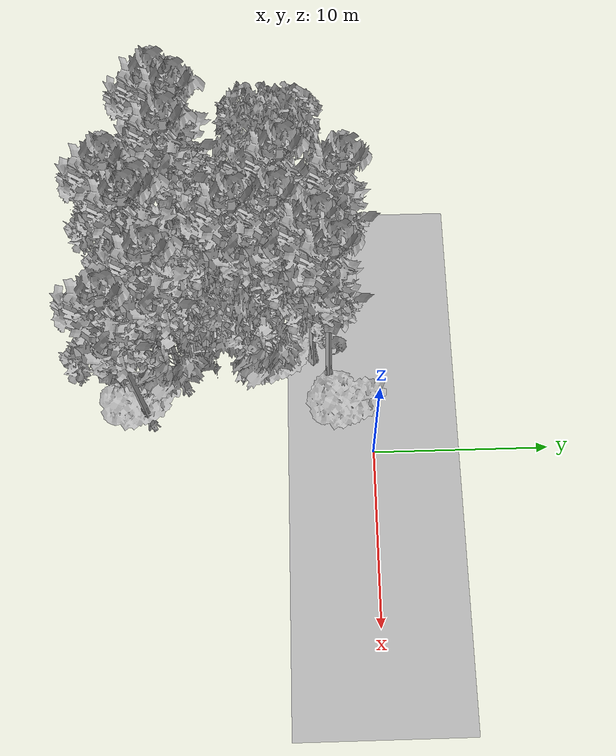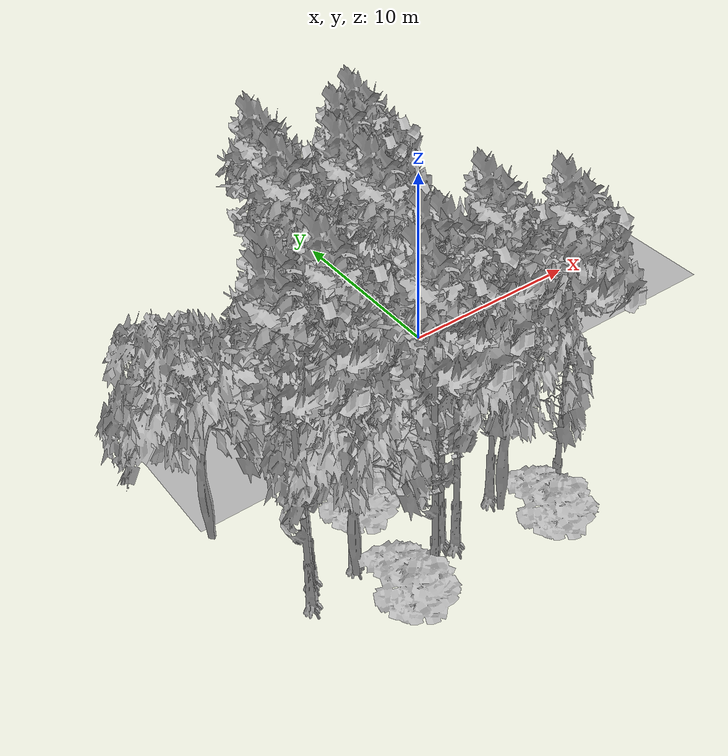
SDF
<sdf version="1.7">
 <world name="default">
  <model name="ground_plane">
   <static>1</static>
   <link name="link">
    <collision name="collision">
     <pose>-50 0 0 0 -0 0</pose>
     <geometry><plane><normal>0 0 1</normal><size>100 100</size></plane></geometry>
     <surface><contact><ode><min_depth>0.01</min_depth><max_vel>0</max_vel></ode></contact></surface>
    </collision>
    <visual name="grass">
     <cast_shadows>0</cast_shadows>
     <geometry>
      <mesh>
       <scale>0.5814285714285714 0.18142857142857144 0.1</scale>
       <uri>file://grass_plane/meshes/grass_plane.dae</uri>
      </mesh>
     </geometry>
    </visual>
   </link>
  </model>
  <model name="Tree 5">
   <static>1</static>
   <pose>-5.770280438324974 -3.3481930520723786 0 1.57079 -0 0</pose>
   <link name="link">
    <collision name="collision">
     <geometry><mesh><scale>3.5 5 3.5</scale><uri>model://tree_9/meshes/tree_9.obj</uri></mesh></geometry>
    </collision>
    <visual name="visual">
     <geometry><mesh><scale>3.5 5 3.5</scale><uri>model://tree_9/meshes/tree_9.obj</uri></mesh></geometry>
    </visual>
   </link>
  </model>
  <model name="Tree 10">
   <static>1</static>
   <pose>-6.427290292997256 -9.65219543196185 0 1.57079 -0 0</pose>
   <link name="link">
    <collision name="collision">
     <geometry><mesh><scale>3.5 5 3.5</scale><uri>model://tree_2/meshes/tree_2.obj</uri></mesh></geometry>
    </collision>
    <visual name="visual">
     <geometry><mesh><scale>3.5 5 3.5</scale><uri>model://tree_2/meshes/tree_2.obj</uri></mesh></geometry>
    </visual>
   </link>
  </model>
  <model name="Tree 11">
   <static>1</static>
   <pose>-11.699976823902972 -10.894039608267878 0 1.57079 -0 0</pose>
   <link name="link">
    <collision name="collision">
     <geometry><mesh><scale>3.5 5 3.5</scale><uri>model://tree_2/meshes/tree_2.obj</uri></mesh></geometry>
    </collision>
    <visual name="visual">
     <geometry><mesh><scale>3.5 5 3.5</scale><uri>model://tree_2/meshes/tree_2.obj</uri></mesh></geometry>
    </visual>
   </link>
  </model>
  <model name="Tree 38">
   <static>1</static>
   <pose>-10.811741499283201 -13.386256837153619 0 1.57079 -0 0</pose>
   <link name="link">
    <collision name="collision">
     <geometry><mesh><scale>4 2.5 4</scale><uri>model://tree_1/meshes/tree_1.obj</uri></mesh></geometry>
    </collision>
    <visual name="visual">
     <geometry><mesh><scale>4 2.5 4</scale><uri>model://tree_1/meshes/tree_1.obj</uri></mesh></geometry>
    </visual>
   </link>
  </model>
  <model name="Tree 44">
   <static>1</static>
   <pose>-4.452420643435083 -11.713150179870878 0 1.57079 -0 0</pose>
   <link name="link">
    <collision name="collision">
     <geometry><mesh><scale>3.5 5 3.5</scale><uri>model://tree_2/meshes/tree_2.obj</uri></mesh></geometry>
    </collision>
    <visual name="visual">
     <geometry><mesh><scale>3.5 5 3.5</scale><uri>model://tree_2/meshes/tree_2.obj</uri></mesh></geometry>
    </visual>
   </link>
  </model>
  <model name="Tree 70">
   <static>1</static>
   <pose>-13.979761720872823 -11.06183409672255 0 1.57079 -0 0</pose>
   <link name="link">
    <collision name="collision">
     <geometry><mesh><scale>3.5 5 3.5</scale><uri>model://tree_9/meshes/tree_9.obj</uri></mesh></geometry>
    </collision>
    <visual name="visual">
     <geometry><mesh><scale>3.5 5 3.5</scale><uri>model://tree_9/meshes/tree_9.obj</uri></mesh></geometry>
    </visual>
   </link>
  </model>
  <model name="Tree 109">
   <static>1</static>
   <pose>-15.518443925284636 -5.425385847746153 0 1.57079 -0 0</pose>
   <link name="link">
    <collision name="collision">
     <geometry><mesh><scale>3.5 5 3.5</scale><uri>model://tree_2/meshes/tree_2.obj</uri></mesh></geometry>
    </collision>
    <visual name="visual">
     <geometry><mesh><scale>3.5 5 3.5</scale><uri>model://tree_2/meshes/tree_2.obj</uri></mesh></geometry>
    </visual>
   </link>
  </model>
  <model name="Tree 116">
   <static>1</static>
   <pose>-7.7044737305500846 -11.631333290633659 0 1.57079 -0 0</pose>
   <link name="link">
    <collision name="collision">
     <geometry><mesh><scale>3.5 5 3.5</scale><uri>model://tree_9/meshes/tree_9.obj</uri></mesh></geometry>
    </collision>
    <visual name="visual">
     <geometry><mesh><scale>3.5 5 3.5</scale><uri>model://tree_9/meshes/tree_9.obj</uri></mesh></geometry>
    </visual>
   </link>
  </model>
  <model name="Tree 122">
   <static>1</static>
   <pose>-5.922536078951509 -5.738882718412427 0 1.57079 -0 0</pose>
   <link name="link">
    <collision name="collision">
     <geometry><mesh><scale>4 2.5 4</scale><uri>model://tree_1/meshes/tree_1.obj</uri></mesh></geometry>
    </collision>
    <visual name="visual">
     <geometry><mesh><scale>4 2.5 4</scale><uri>model://tree_1/meshes/tree_1.obj</uri></mesh></geometry>
    </visual>
   </link>
  </model>
  <model name="Tree 133">
   <static>1</static>
   <pose>-13.327398469383972 -10.05041229036016 0 1.57079 -0 0</pose>
   <link name="link">
    <collision name="collision">
     <geometry><mesh><scale>3.5 5 3.5</scale><uri>model://tree_9/meshes/tree_9.obj</uri></mesh></geometry>
    </collision>
    <visual name="visual">
     <geometry><mesh><scale>3.5 5 3.5</scale><uri>model://tree_9/meshes/tree_9.obj</uri></mesh></geometry>
    </visual>
   </link>
  </model>
  <model name="Tree 134">
   <static>1</static>
   <pose>-9.171331318813692 -13.105249612566006 0 1.57079 -0 0</pose>
   <link name="link">
    <collision name="collision">
     <geometry><mesh><scale>3.5 5 3.5</scale><uri>model://tree_9/meshes/tree_9.obj</uri></mesh></geometry>
    </collision>
    <visual name="visual">
     <geometry><mesh><scale>3.5 5 3.5</scale><uri>model://tree_9/meshes/tree_9.obj</uri></mesh></geometry>
    </visual>
   </link>
  </model>
  <model name="Tree 136">
   <static>1</static>
   <pose>-9.948034881585848 -8.123653087335656 0 1.57079 -0 0</pose>
   <link name="link">
    <collision name="collision">
     <geometry><mesh><scale>4 2.5 4</scale><uri>model://tree_1/meshes/tree_1.obj</uri></mesh></geometry>
    </collision>
    <visual name="visual">
     <geometry><mesh><scale>4 2.5 4</scale><uri>model://tree_1/meshes/tree_1.obj</uri></mesh></geometry>
    </visual>
   </link>
  </model>
  <model name="Tree 141">
   <static>1</static>
   <pose>-6.9168690257031855 -7.108718136604426 0 1.57079 -0 0</pose>
   <link name="link">
    <collision name="collision">
     <geometry><mesh><scale>3.5 5 3.5</scale><uri>model://tree_9/meshes/tree_9.obj</uri></mesh></geometry>
    </collision>
    <visual name="visual">
     <geometry><mesh><scale>3.5 5 3.5</scale><uri>model://tree_9/meshes/tree_9.obj</uri></mesh></geometry>
    </visual>
   </link>
  </model>
  <model name="Tree 146">
   <static>1</static>
   <pose>-7.275215294341891 -12.119292316022658 0 1.57079 -0 0</pose>
   <link name="link">
    <collision name="collision">
     <geometry><mesh><scale>3.5 5 3.5</scale><uri>model://tree_9/meshes/tree_9.obj</uri></mesh></geometry>
    </collision>
    <visual name="visual">
     <geometry><mesh><scale>3.5 5 3.5</scale><uri>model://tree_9/meshes/tree_9.obj</uri></mesh></geometry>
    </visual>
   </link>
  </model>
  <model name="Tree 157">
   <static>1</static>
   <pose>-4.419270396962034 -2.4527848097170235 0 1.57079 -0 0</pose>
   <link name="link">
    <collision name="collision">
     <geometry><mesh><scale>3.5 5 3.5</scale><uri>model://tree_9/meshes/tree_9.obj</uri></mesh></geometry>
    </collision>
    <visual name="visual">
     <geometry><mesh><scale>3.5 5 3.5</scale><uri>model://tree_9/meshes/tree_9.obj</uri></mesh></geometry>
    </visual>
   </link>
  </model>
  <model name="Tree 164">
   <static>1</static>
   <pose>-2.185269588739885 -12.832927172999572 0 1.57079 -0 0</pose>
   <link name="link">
    <collision name="collision">
     <geometry><mesh><scale>3.5 5 3.5</scale><uri>model://tree_9/meshes/tree_9.obj</uri></mesh></geometry>
    </collision>
    <visual name="visual">
     <geometry><mesh><scale>3.5 5 3.5</scale><uri>model://tree_9/meshes/tree_9.obj</uri></mesh></geometry>
    </visual>
   </link>
  </model>
  <model name="Tree 188">
   <static>1</static>
   <pose>-8.880949054636034 -1.9470571756715263 0 1.57079 -0 0</pose>
   <link name="link">
    <collision name="collision">
     <geometry><mesh><scale>3.5 5 3.5</scale><uri>model://tree_9/meshes/tree_9.obj</uri></mesh></geometry>
    </collision>
    <visual name="visual">
     <geometry><mesh><scale>3.5 5 3.5</scale><uri>model://tree_9/meshes/tree_9.obj</uri></mesh></geometry>
    </visual>
   </link>
  </model>
  <model name="Tree 191">
   <static>1</static>
   <pose>-3.0644470476703916 -1.6639471052816308 0 1.57079 -0 0</pose>
   <link name="link">
    <collision name="collision">
     <geometry><mesh><scale>4 2.5 4</scale><uri>model://tree_1/meshes/tree_1.obj</uri></mesh></geometry>
    </collision>
    <visual name="visual">
     <geometry><mesh><scale>4 2.5 4</scale><uri>model://tree_1/meshes/tree_1.obj</uri></mesh></geometry>
    </visual>
   </link>
  </model>
  <model name="Tree 195">
   <static>1</static>
   <pose>-7.0586491210459315 -5.221137374436385 0 1.57079 -0 0</pose>
   <link name="link">
    <collision name="collision">
     <geometry><mesh><scale>3.5 5 3.5</scale><uri>model://tree_9/meshes/tree_9.obj</uri></mesh></geometry>
    </collision>
    <visual name="visual">
     <geometry><mesh><scale>3.5 5 3.5</scale><uri>model://tree_9/meshes/tree_9.obj</uri></mesh></geometry>
    </visual>
   </link>
  </model>
  <model name="Tree 216">
   <static>1</static>
   <pose>-9.641202164576121 -4.896561691630941 0 1.57079 -0 0</pose>
   <link name="link">
    <collision name="collision">
     <geometry><mesh><scale>3.5 5 3.5</scale><uri>model://tree_9/meshes/tree_9.obj</uri></mesh></geometry>
    </collision>
    <visual name="visual">
     <geometry><mesh><scale>3.5 5 3.5</scale><uri>model://tree_9/meshes/tree_9.obj</uri></mesh></geometry>
    </visual>
   </link>
  </model>
  <model name="Tree 224">
   <static>1</static>
   <pose>-5.037267441199305 -6.887168204752816 0 1.57079 -0 0</pose>
   <link name="link">
    <collision name="collision">
     <geometry><mesh><scale>3.5 5 3.5</scale><uri>model://tree_2/meshes/tree_2.obj</uri></mesh></geometry>
    </collision>
    <visual name="visual">
     <geometry><mesh><scale>3.5 5 3.5</scale><uri>model://tree_2/meshes/tree_2.obj</uri></mesh></geometry>
    </visual>
   </link>
  </model>
  <model name="Tree 256">
   <static>1</static>
   <pose>-3.354831519386643 -13.561168253362862 0 1.57079 -0 0</pose>
   <link name="link">
    <collision name="collision">
     <geometry><mesh><scale>4 2.5 4</scale><uri>model://tree_1/meshes/tree_1.obj</uri></mesh></geometry>
    </collision>
    <visual name="visual">
     <geometry><mesh><scale>4 2.5 4</scale><uri>model://tree_1/meshes/tree_1.obj</uri></mesh></geometry>
    </visual>
   </link>
  </model>
  <model name="Tree 280">
   <static>1</static>
   <pose>-4.335145055782611 -10.890864569716742 0 1.57079 -0 0</pose>
   <link name="link">
    <collision name="collision">
     <geometry><mesh><scale>3.5 5 3.5</scale><uri>model://tree_9/meshes/tree_9.obj</uri></mesh></geometry>
    </collision>
    <visual name="visual">
     <geometry><mesh><scale>3.5 5 3.5</scale><uri>model://tree_9/meshes/tree_9.obj</uri></mesh></geometry>
    </visual>
   </link>
  </model>
  <model name="Tree 283">
   <static>1</static>
   <pose>-11.384919457582342 -10.39942517384308 0 1.57079 -0 0</pose>
   <link name="link">
    <collision name="collision">
     <geometry><mesh><scale>3.5 5 3.5</scale><uri>model://tree_9/meshes/tree_9.obj</uri></mesh></geometry>
    </collision>
    <visual name="visual">
     <geometry><mesh><scale>3.5 5 3.5</scale><uri>model://tree_9/meshes/tree_9.obj</uri></mesh></geometry>
    </visual>
   </link>
  </model>
  <model name="Tree 291">
   <static>1</static>
   <pose>-8.748943316591848 -7.471340952429123 0 1.57079 -0 0</pose>
   <link name="link">
    <collision name="collision">
     <geometry><mesh><scale>4 2.5 4</scale><uri>model://tree_1/meshes/tree_1.obj</uri></mesh></geometry>
    </collision>
    <visual name="visual">
     <geometry><mesh><scale>4 2.5 4</scale><uri>model://tree_1/meshes/tree_1.obj</uri></mesh></geometry>
    </visual>
   </link>
  </model>
 </world>
</sdf>
